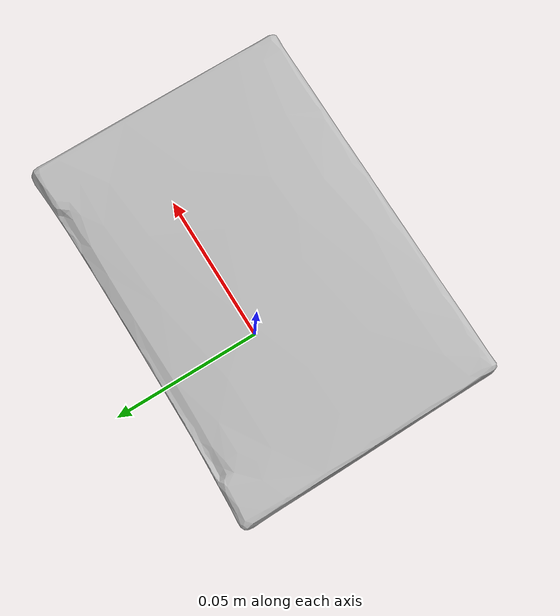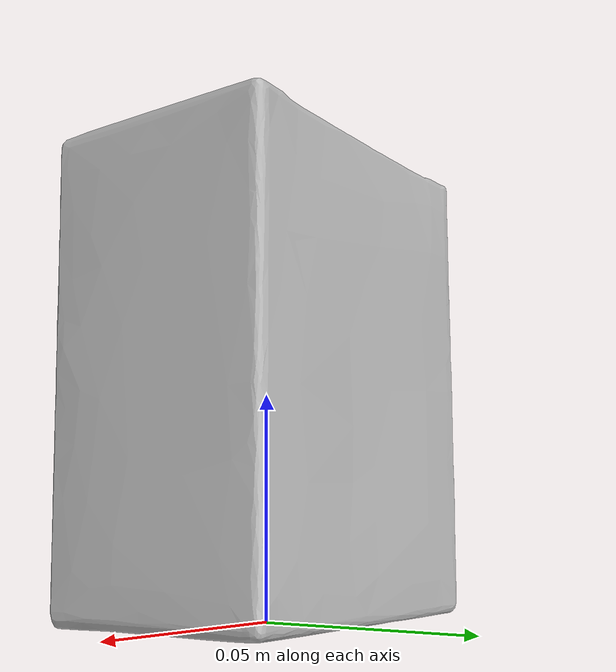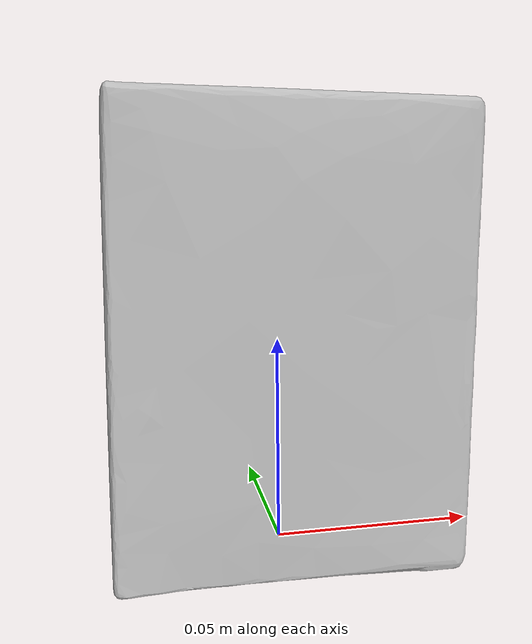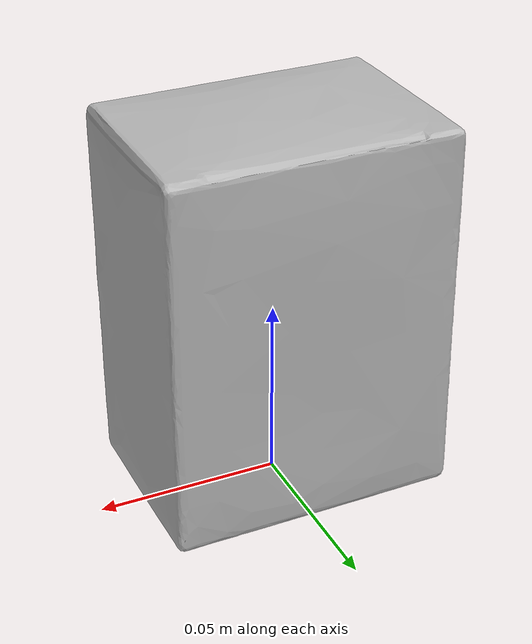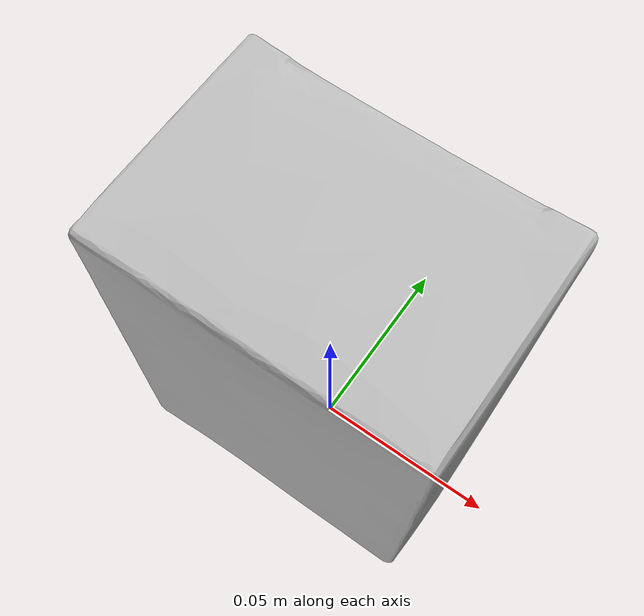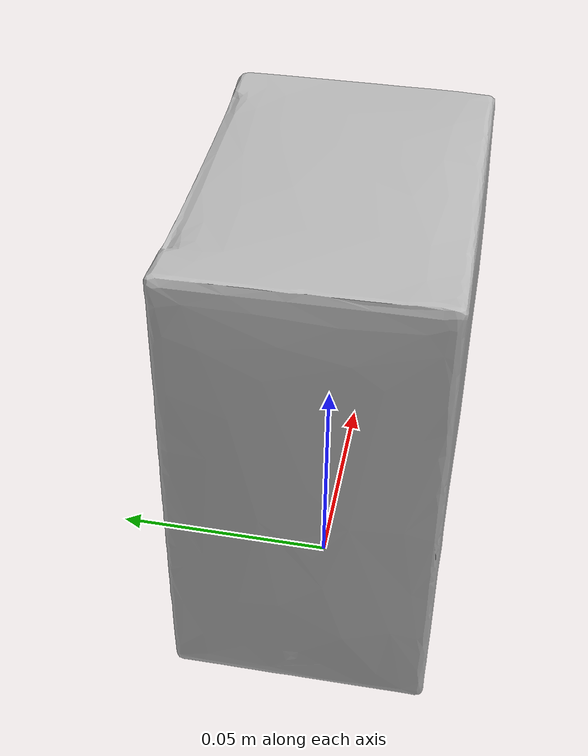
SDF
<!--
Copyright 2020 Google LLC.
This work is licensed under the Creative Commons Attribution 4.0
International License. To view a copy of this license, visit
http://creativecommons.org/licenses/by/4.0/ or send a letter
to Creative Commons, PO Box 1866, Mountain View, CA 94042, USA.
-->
<?xml version="1.0" ?>
<sdf version="1.6">
  <model name="Perricone_MD_Vitamin_C_Ester_Serum">
    <link name="link_0">
      <visual name="visual">
        <geometry>
          <mesh>
            <uri>meshes/model.obj</uri>
          </mesh>
        </geometry>
      </visual>
      <collision name="collision_0">
        <geometry>
          <mesh>
            <uri>meshes/model.obj</uri>
          </mesh>
        </geometry>
      </collision>
    </link>
  </model>
</sdf>
